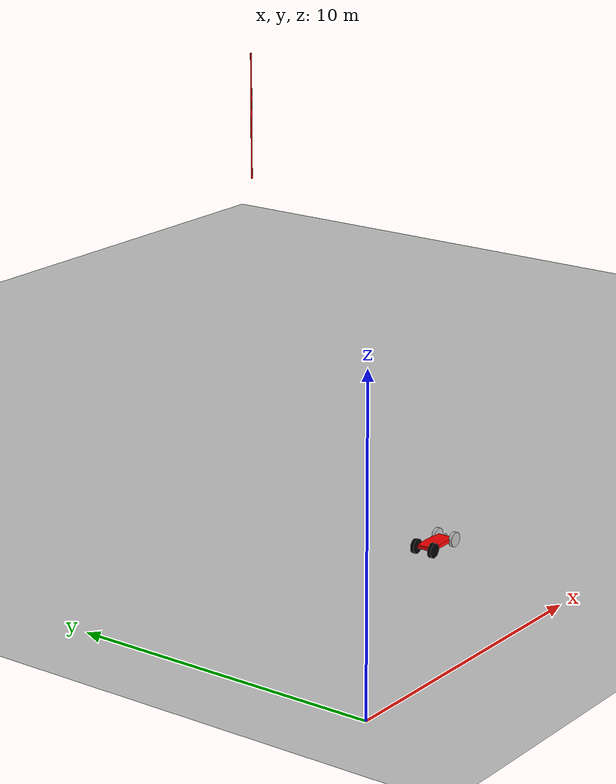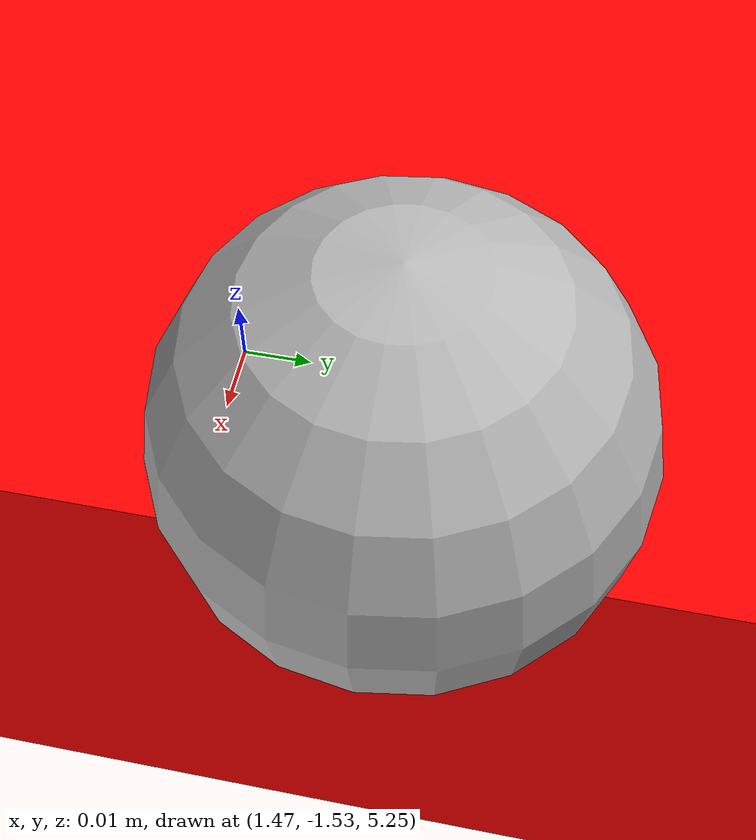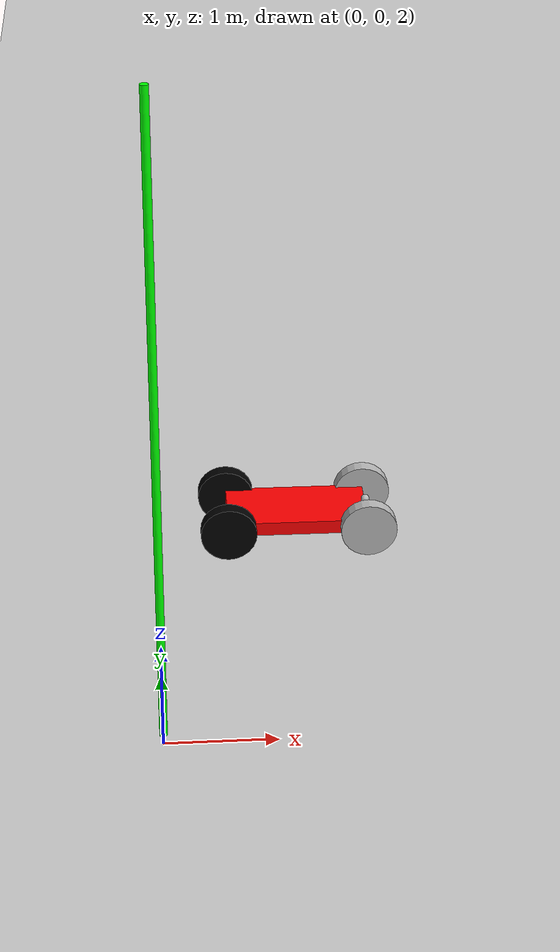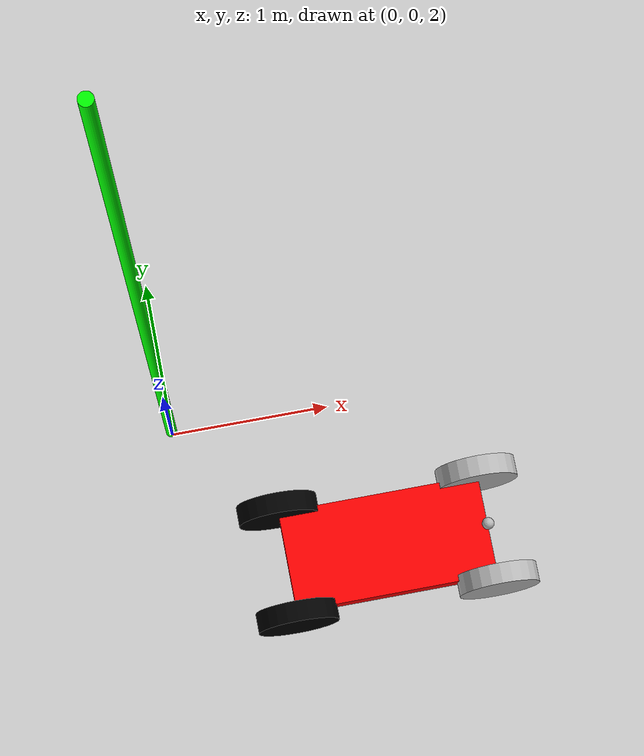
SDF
<sdf version="1.4">
 <world name="default">
  <include><uri>model://ground_plane</uri></include>
  <include><uri>model://sun</uri></include>
  <model name="start_pole">
   <pose>0 0 5 0 0 0</pose>
   <link name="unit_cylinder::link">
    <visual name="visual">
     <geometry><cylinder><radius>0.034805</radius><length>5.81016</length></cylinder></geometry>
     <material><ambient>0 1 0 1</ambient></material>
     <transparency>-0</transparency>
    </visual>
    <collision name="collision">
     <geometry><cylinder><radius>0.034805</radius><length>1.81016</length></cylinder></geometry>
    </collision>
   </link>
   <static>1</static>
  </model>
  <model name="end_pole">
   <pose>40 35 5 0 0 0</pose>
   <link name="unit_cylinder::link">
    <visual name="visual">
     <geometry><cylinder><radius>0.034805</radius><length>5.81016</length></cylinder></geometry>
     <material><ambient>1 0 0 1</ambient></material>
     <transparency>-0</transparency>
    </visual>
    <collision name="collision">
     <geometry><cylinder><radius>0.034805</radius><length>1.81016</length></cylinder></geometry>
    </collision>
   </link>
   <static>1</static>
  </model>
  <model name="car">
   <pose>1 -1.5 5.1 0 0 0</pose>
   <link name="chassis">
    <pose>0 0 .1 0 0 0</pose>
    <inertial>
     <inertia><ixx>1</ixx><ixy>0</ixy><ixz>0</ixz><iyy>1</iyy><iyz>0</iyz><izz>1</izz></inertia>
     <mass>5.0</mass>
    </inertial>
    <collision name="collision"><geometry><box><size>1 .5 .1</size></box></geometry></collision>
    <visual name="visual">
     <geometry><box><size>1 .5 .1</size></box></geometry>
     <material>
      <script><name>ModelPreview_2::left_front_wheel::visual_MATERIAL_</name></script>
      <ambient>1 0 0 1</ambient>
      <shader type="vertex"><normal_map>__default__</normal_map></shader>
     </material>
    </visual>
   </link>
   <link name="front_indicator">
    <pose>.5 0 0.18 0 0 0</pose>
    <geometry><sphere><radius>.03</radius></sphere></geometry>
    <visual name="visual">
     <geometry><sphere><radius>.03</radius></sphere></geometry>
     <material>Gazebo/Blue</material>
    </visual>
   </link>
   <link name="left_front_wheel">
    <pose>.5 .27 .1 1.5707 0 0</pose>
    <inertial>
     <inertia><ixx>1</ixx><ixy>0</ixy><ixz>0</ixz><iyy>1</iyy><iyz>0</iyz><izz>1</izz></inertia>
     <mass>1.0</mass>
    </inertial>
    <collision name="collision">
     <geometry><cylinder><radius>.2</radius><length>.1</length></cylinder></geometry>
    </collision>
    <visual name="visual">
     <geometry><cylinder><radius>.2</radius><length>.1</length></cylinder></geometry>
    </visual>
   </link>
   <link name="right_front_wheel">
    <pose>.5 -.27 .1 1.5707 0 0</pose>
    <inertial>
     <inertia><ixx>1</ixx><ixy>0</ixy><ixz>0</ixz><iyy>1</iyy><iyz>0</iyz><izz>1</izz></inertia>
     <mass>1.0</mass>
    </inertial>
    <collision name="collision">
     <geometry><cylinder><radius>.2</radius><length>.1</length></cylinder></geometry>
    </collision>
    <visual name="visual">
     <geometry><cylinder><radius>.2</radius><length>.1</length></cylinder></geometry>
    </visual>
   </link>
   <link name="left_back_wheel">
    <pose>-.5 .27 .1 1.5707 0 0</pose>
    <inertial>
     <inertia><ixx>1</ixx><ixy>0</ixy><ixz>0</ixz><iyy>1</iyy><iyz>0</iyz><izz>1</izz></inertia>
     <mass>1.0</mass>
    </inertial>
    <collision name="collision">
     <geometry><cylinder><radius>.2</radius><length>.1</length></cylinder></geometry>
    </collision>
    <visual name="visual">
     <geometry><cylinder><radius>.2</radius><length>.1</length></cylinder></geometry>
     <material>
      <script><name>ModelPreview_2::left_front_wheel::visual_MATERIAL_</name></script>
      <ambient>0 0 0 1</ambient>
      <shader type="vertex"><normal_map>__default__</normal_map></shader>
     </material>
    </visual>
   </link>
   <link name="right_back_wheel">
    <pose>-.5 -.27 .1 1.5707 0 0</pose>
    <inertial>
     <inertia><ixx>1</ixx><ixy>0</ixy><ixz>0</ixz><iyy>1</iyy><iyz>0</iyz><izz>1</izz></inertia>
     <mass>1.0</mass>
    </inertial>
    <collision name="collision">
     <geometry><cylinder><radius>.2</radius><length>.1</length></cylinder></geometry>
    </collision>
    <visual name="visual">
     <geometry><cylinder><radius>.2</radius><length>.1</length></cylinder></geometry>
     <material>
      <script><name>ModelPreview_2::left_front_wheel::visual_MATERIAL_</name></script>
      <ambient>0 0 0 1</ambient>
      <shader type="vertex"><normal_map>__default__</normal_map></shader>
     </material>
    </visual>
   </link>
   <joint type="revolute" name="left_front_wheel_hinge">
    <child>left_front_wheel</child>
    <parent>chassis</parent>
    <axis><xyz>0 1 0</xyz></axis>
   </joint>
   <joint type="revolute" name="right_back_wheel_hinge">
    <child>right_back_wheel</child>
    <parent>chassis</parent>
    <axis><xyz>0 1 0</xyz></axis>
   </joint>
   <joint type="revolute" name="left_back_wheel_hinge">
    <child>left_back_wheel</child>
    <parent>chassis</parent>
    <axis><xyz>0 1 0</xyz></axis>
   </joint>
   <joint type="revolute" name="right_front_wheel_hinge">
    <child>right_front_wheel</child>
    <parent>chassis</parent>
    <axis><xyz>0 1 0</xyz></axis>
   </joint>
   <joint type="fixed" name="indicator_joint"><child>front_indicator</child><parent>chassis</parent></joint>
   <plugin name="wheeledRobot" filename="libwheeledRobot.so"/>
  </model>
 </world>
</sdf>
